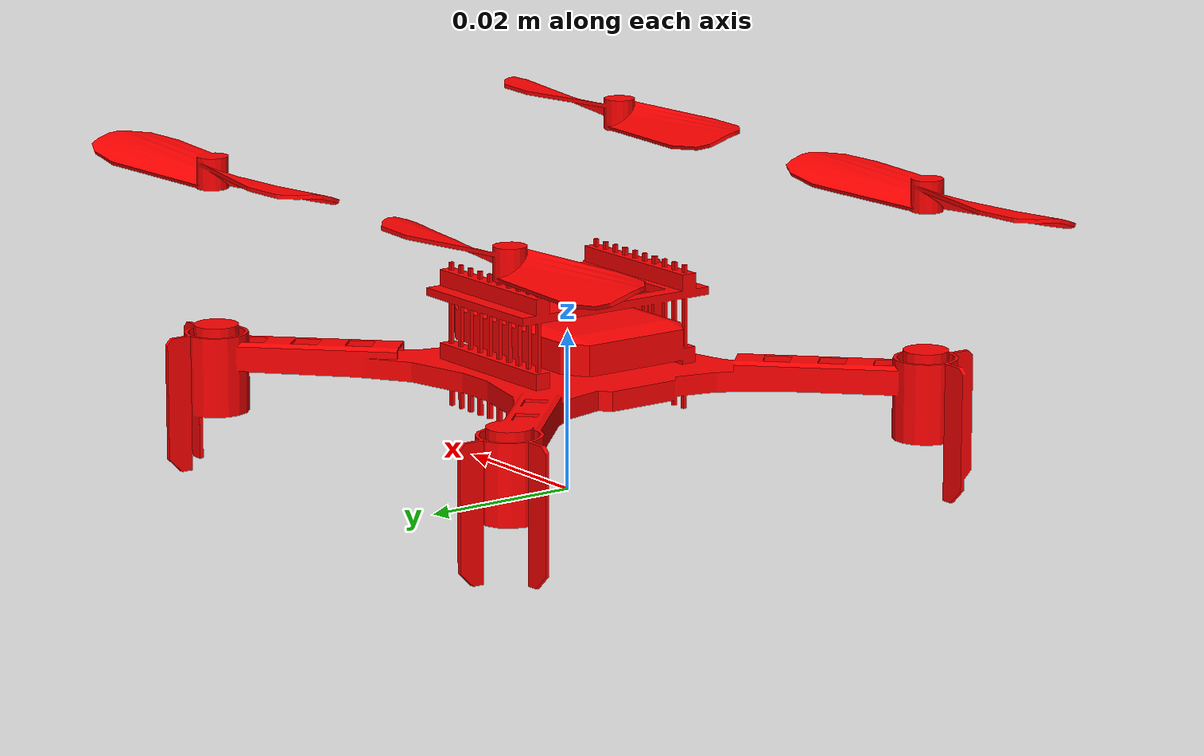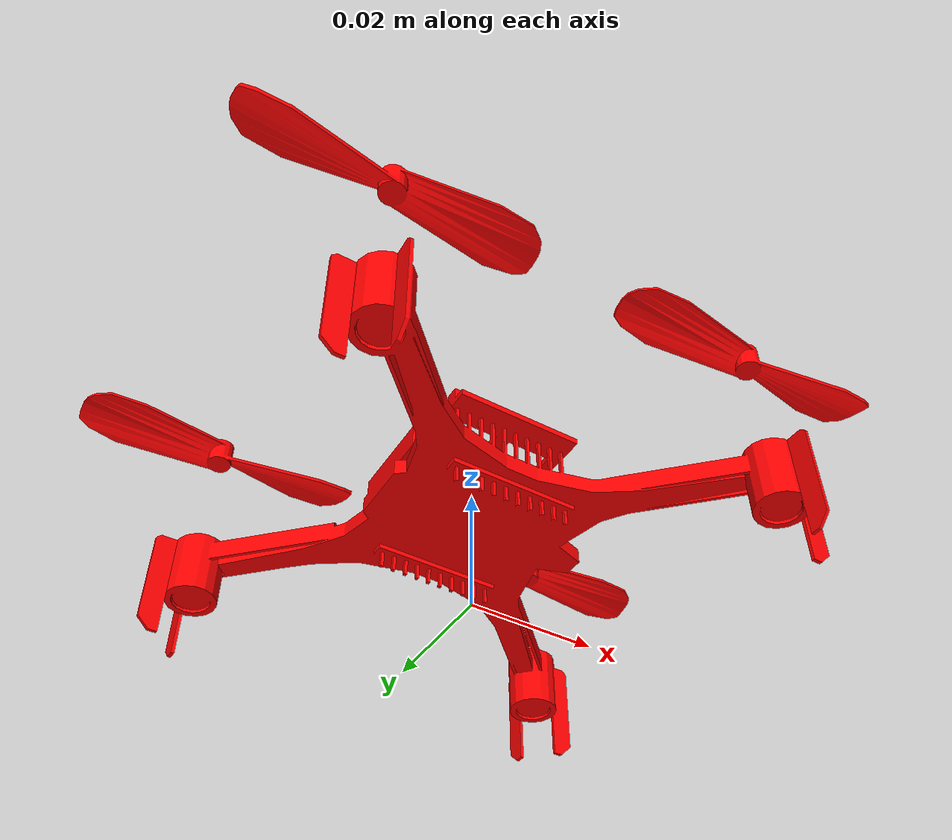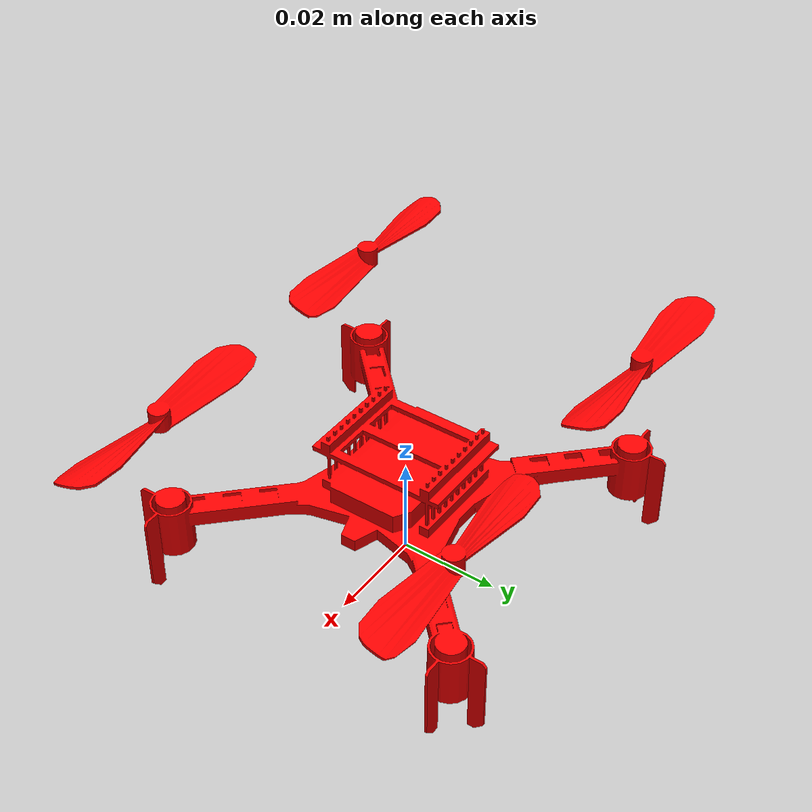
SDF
<?xml version="1.0" ?>
<sdf version="1.8">
  <model name="crazyflie_red">
    <static>true</static>
    <link name="crazyflie/body">
      <pose>0 0 0.017425 0 0 0</pose>
      <inertial>
        <mass>0.025</mass>
        <inertia>
          <ixx>16.571710E-06</ixx>
          <iyy>16.655602E-06</iyy>
          <izz>29.261652E-06</izz>
        </inertia>
      </inertial>

      <collision name="body_collision">
        <geometry>
          <box><size>0.10 0.10 0.035</size></box>
        </geometry>
      </collision>

      <visual name="body_visual">
        <geometry>
          <mesh>
            <uri>../meshes/collada_files/cf2_assembly.dae</uri>
            <scale>1 1 1</scale>
          </mesh>
        </geometry>
        <material>
          <ambient>1 0 0 1</ambient>
          <diffuse>1 0 0 1</diffuse>
          <specular>0.3 0 0 1</specular>
        </material>
      </visual>

      <visual name="prop_ccw_0">
        <pose>0.031 -0.031 0.021 0 0 0</pose>
        <geometry>
          <mesh>
            <uri>../meshes/collada_files/ccw_prop.dae</uri>
          </mesh>
        </geometry>
        <material>
          <ambient>1 0 0 1</ambient>
          <diffuse>1 0 0 1</diffuse>
        </material>
      </visual>

      <visual name="prop_cw_0">
        <pose>0.031 0.031 0.021 0 0 0</pose>
        <geometry>
          <mesh>
            <uri>../meshes/collada_files/cw_prop.dae</uri>
          </mesh>
        </geometry>
        <material>
          <ambient>1 0 0 1</ambient>
          <diffuse>1 0 0 1</diffuse>
        </material>
      </visual>

      <visual name="prop_ccw_1">
        <pose>-0.031 0.031 0.021 0 0 0</pose>
        <geometry>
          <mesh>
            <uri>../meshes/collada_files/ccw_prop.dae</uri>
          </mesh>
        </geometry>
        <material>
          <ambient>1 0 0 1</ambient>
          <diffuse>1 0 0 1</diffuse>
        </material>
      </visual>

      <visual name="prop_cw_1">
        <pose>-0.031 -0.031 0.021 0 0 0</pose>
        <geometry>
          <mesh>
            <uri>../meshes/collada_files/cw_prop.dae</uri>
          </mesh>
        </geometry>
        <material>
          <ambient>1 0 0 1</ambient>
          <diffuse>1 0 0 1</diffuse>
        </material>
      </visual>

    </link>
  </model>
</sdf>
